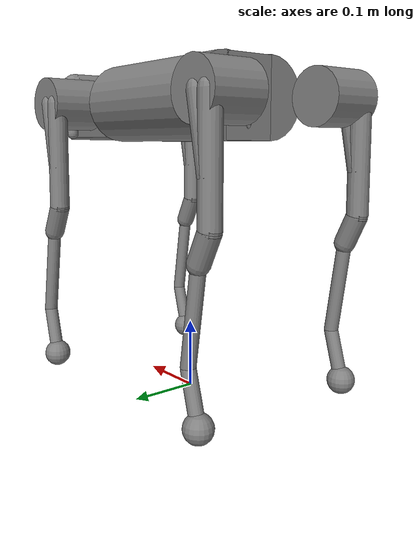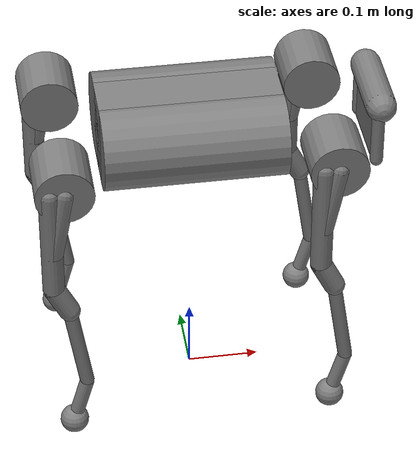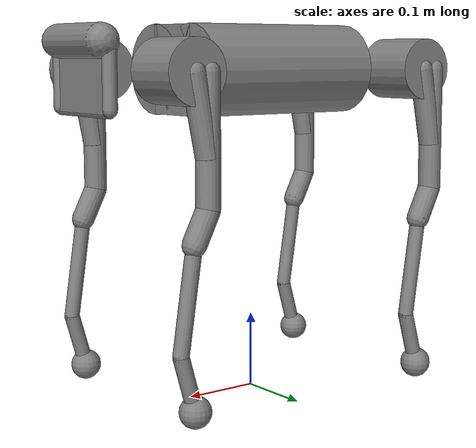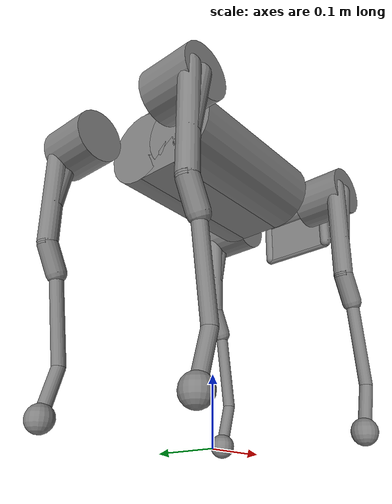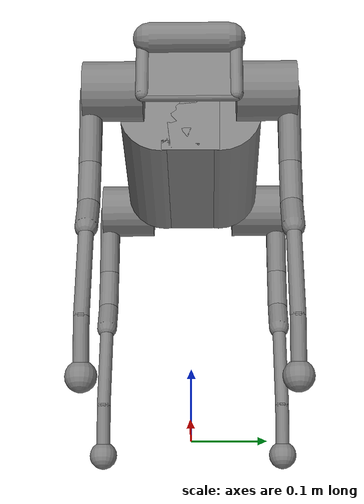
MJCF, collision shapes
<mujoco model="a1">
  <compiler angle="radian" meshdir="assets" texturedir="assets" autolimits="true"/>

  <option cone="pyramidal" impratio="5" gravity="0 0 -9.81" timestep="0.001"/>
<!--condim-->
  <default>
    <default class="a1">
      <geom friction="0.6" margin="0.001"/>
      <joint axis="0 1 0" damping="0.01" armature="0.01"/>
      <position kp="100" forcerange="-33.5 33.5"/>
      <default class="abduction">
        <joint axis="1 0 0" damping="0.01" range="-0.802851 0.802851"/>
        <position ctrlrange="-0.802851 0.802851"/>
      </default>
      <default class="hip">
        <joint range="-1.0472 4.18879"/>
        <position ctrlrange="-1.0472 4.18879"/>
      </default>
      <default class="knee">
        <joint range="-2.69653 -0.916298"/>
        <position ctrlrange="-2.69653 -0.916298"/>
      </default>
      <default class="visual">
        <geom type="mesh" contype="0" conaffinity="0" group="2" material="dark"/>
      </default>
      <default class="collision">
        <geom group="3" type="capsule"/>
        <default class="hip_left">
          <geom size="0.04 0.04" quat="1 1 0 0" type="cylinder" pos="0 0.055 0"/>
        </default>
        <default class="hip_right">
          <geom size="0.04 0.04" quat="1 1 0 0" type="cylinder" pos="0 -0.055 0"/>
        </default>
        <default class="thigh1">
          <geom size="0.015" fromto="-0.02 0 0 -0.02 0 -0.16"/>
        </default>
        <default class="thigh2">
          <geom size="0.015" fromto="0 0 0 -0.02 0 -0.1"/>
        </default>
        <default class="thigh3">
          <geom size="0.015" fromto="-0.02 0 -0.16 0 0 -0.2"/>
        </default>
        <default class="calf1">
          <geom size="0.01" fromto="0 0 0 0.02 0 -0.13"/>
        </default>
        <default class="calf2">
          <geom size="0.01" fromto="0.02 0 -0.13 0 0 -0.2"/>
        </default>
        <default class="foot">
          <geom type="sphere" size="0.02" pos="0 0 -0.2" priority="1" solimp="0.015 1 0.02" condim="3"
            friction="0.8 0.02 0.01"/>
        </default>
      </default>
    </default>
  </default>

  <asset>
    <material name="dark" specular="0" shininess="0.25" rgba="0.2 0.2 0.2 1"/>
    <texture type="2d" name="trunk_A1" file="trunk_A1.png"/>
    <material name="carbonfibre" texture="trunk_A1" specular="0" shininess="0.25"/>

    <mesh class="a1" file="calf.obj"/>
    <mesh class="a1" file="hip.obj"/>
    <mesh class="a1" file="thigh.obj"/>
    <mesh class="a1" file="thigh_mirror.obj"/>
    <mesh class="a1" file="trunk.obj"/>
  </asset>

  <worldbody>
    <light name="spotlight" mode="targetbodycom" target="trunk" pos="0 -1 2"/>
    <body name="trunk" pos="0 0 0.43" childclass="a1">
      <freejoint name="free"/>
            <inertial mass="10" pos="0 0.0041 -0.0005"
        fullinertia="0.158533 0.377999 0.456542 -3.66e-05 -6.11e-05 -2.75e-05"/>
      <geom class="visual" mesh="trunk" material="carbonfibre"/>
      <geom class="collision" size="0.125 0.04 0.057" type="box"/>
      <geom class="collision" quat="1 0 1 0" pos="0 -0.04 0" size="0.058 0.125" type="cylinder"/>
      <geom class="collision" quat="1 0 1 0" pos="0 +0.04 0" size="0.058 0.125" type="cylinder"/>
      <geom class="collision" pos="0.25 0 0" size="0.005 0.06 0.05" type="box"/>
      <geom class="collision" pos="0.25 0.06 -0.01" size="0.009 0.035"/>
      <geom class="collision" pos="0.25 -0.06 -0.01" size="0.009 0.035"/>
      <geom class="collision" pos="0.25 0 -0.05" size="0.005 0.06" quat="1 1 0 0"/>
      <geom class="collision" pos="0.255 0 0.0355" size="0.021 0.052" quat="1 1 0 0"/>
      <site name="imu" pos="0 0 0"/>
        <body name="FL_hip" pos="0.183 0.047 0">
        <inertial mass="0.696" pos="-0.003311 0.000635 3.1e-05" quat="0.494499 0.491507 0.506268 0.507528"
          diaginertia="0.000807752 0.00055293 0.000468983"/>
        <joint class="abduction" name="FL_hip_joint"/>
        <geom class="visual" mesh="hip"/>
        <geom class="hip_left"/>
        <geom class="collision" size="0.04 0.04" pos="0 0.055 0" quat="1 1 0 0" type="cylinder"/>
        <site name='FL_in_shoulder' pos='0 0 0' quat='1 0 0 0' size='0.01' rgba="0 0 0 0"/>  <!-- added-->
        <body name="FL_thigh" pos="0 0.08505 0">
          <inertial mass="1.013" pos="-0.003237 -0.022327 -0.027326" quat="0.999125 0.00256393 -0.0409531 0.00806091"
            diaginertia="0.00555739 0.00513936 0.00133944"/>
          <joint class="hip" name="FL_thigh_joint"/>
          <geom class="visual" mesh="thigh"/>
          <geom class="thigh1"/>
          <geom class="thigh2"/>
          <geom class="thigh3"/>
          <site name='FL_out_shoulder' pos='0 0 0' quat='1 0 0 0' size='0.01' rgba="0 0 0 0"/>   <!-- added-->
          <body name="FL_calf" pos="0 0 -0.2">
            <inertial mass="0.226" pos="0.00472659 0 -0.131975" quat="0.706886 0.017653 0.017653 0.706886"
              diaginertia="0.00340344 0.00339393 3.54834e-05"/>
            <joint class="knee" name="FL_calf_joint"/>
            <geom class="visual" mesh="calf"/>
            <geom class="calf1"/>
            <geom class="calf2"/>
            <geom class="foot"/>
            <site name='FL_elbow' pos='0 0 0' quat='1 0 0 0' size='0.01' rgba="0 0 0 0"/> <!-- added-->
            <site name='FL_foot' pos='0 0 -0.2' quat='1 0 0 0' size='0.01' rgba="0 0 0 0"/> <!-- added-->
          </body>
        </body>
      </body>
      <body name="FR_hip" pos="0.183 -0.047 0">
        <inertial mass="0.696" pos="-0.003311 -0.000635 3.1e-05" quat="0.507528 0.506268 0.491507 0.494499"
          diaginertia="0.000807752 0.00055293 0.000468983"/>
        <joint class="abduction" name="FR_hip_joint"/>
        <geom class="visual" mesh="hip" quat="0 1 0 0"/>
        <geom class="hip_right"/>
        <site name='FR_in_shoulder' pos='0 0 0' quat='1 0 0 0' size='0.01' rgba="0 0 0 0"/>  <!-- added-->
        <body name="FR_thigh" pos="0 -0.08505 0">
          <inertial mass="1.013" pos="-0.003237 0.022327 -0.027326" quat="0.999125 -0.00256393 -0.0409531 -0.00806091"
            diaginertia="0.00555739 0.00513936 0.00133944"/>
          <joint class="hip" name="FR_thigh_joint"/>
          <geom class="visual" mesh="thigh_mirror"/>
          <geom class="thigh1"/>
          <geom class="thigh2"/>
          <geom class="thigh3"/>
          <site name='FR_out_shoulder' pos='0 0 0' quat='1 0 0 0' size='0.01' rgba="0 0 0 0"/>   <!-- added-->
          <body name="FR_calf" pos="0 0 -0.2">
            <inertial mass="0.226" pos="0.00472659 0 -0.131975" quat="0.706886 0.017653 0.017653 0.706886"
              diaginertia="0.00340344 0.00339393 3.54834e-05"/>
            <joint class="knee" name="FR_calf_joint"/>
            <geom class="visual" mesh="calf"/>
            <geom class="calf1"/>
            <geom class="calf2"/>
            <geom class="foot"/>
            <site name='FR_foot' pos='0 0 -0.2' size='0.01' rgba="0 0 1 1"/> <!-- added-->
          </body>
        </body>
      </body>
           <body name="RL_hip" pos="-0.183 0.047 0">
        <inertial mass="0.696" pos="0.003311 0.000635 3.1e-05" quat="0.506268 0.507528 0.494499 0.491507"
          diaginertia="0.000807752 0.00055293 0.000468983"/>
        <joint class="abduction" name="RL_hip_joint"/>
        <geom class="visual" quat="0 0 1 0" mesh="hip"/>
        <geom class="hip_left"/>
        <site name='RL_in_shoulder' pos='0 0 0' quat='1 0 0 0' size='0.01' rgba="0 0 0 0"/>  <!-- added-->
        <body name="RL_thigh" pos="0 0.08505 0">
          <inertial mass="1.013" pos="-0.003237 -0.022327 -0.027326" quat="0.999125 0.00256393 -0.0409531 0.00806091"
            diaginertia="0.00555739 0.00513936 0.00133944"/>
          <joint class="hip" name="RL_thigh_joint"/>
          <geom class="visual" mesh="thigh"/>
          <geom class="thigh1"/>
          <geom class="thigh2"/>
          <geom class="thigh3"/>
          <site name='RL_out_shoulder' pos='0 0 0' quat='1 0 0 0' size='0.01' rgba="0 0 0 0"/>   <!-- added-->
          <body name="RL_calf" pos="0 0 -0.2">
            <inertial mass="0.226" pos="0.00472659 0 -0.131975" quat="0.706886 0.017653 0.017653 0.706886"
              diaginertia="0.00340344 0.00339393 3.54834e-05"/>
            <joint class="knee" name="RL_calf_joint"/>
            <geom class="visual" mesh="calf"/>
            <geom class="calf1"/>
            <geom class="calf2"/>
            <geom class="foot"/>
            <site name='RL_elbow' pos='0 0 0' quat='1 0 0 0' size='0.01' rgba="0 0 0 0"/> <!-- added-->
            <site name='RL_foot' pos='0 0 -0.2' quat='1 0 0 0' size='0.01' rgba="0 0 0 0"/> <!-- added-->
          </body>
        </body>
      </body>
      <body name="RR_hip" pos="-0.183 -0.047 0">
        <inertial mass="0.696" pos="0.003311 -0.000635 3.1e-05" quat="0.491507 0.494499 0.507528 0.506268"
          diaginertia="0.000807752 0.00055293 0.000468983"/>
        <joint class="abduction" name="RR_hip_joint"/>
        <geom class="visual" quat="0 0 0 -1" mesh="hip"/>
        <geom class="hip_right"/>
        <site name='RR_in_shoulder' pos='0 0 0' quat='1 0 0 0' size='0.01' rgba="0 0 0 0"/>  <!-- added-->
        <body name="RR_thigh" pos="0 -0.08505 0">
          <inertial mass="1.013" pos="-0.003237 0.022327 -0.027326" quat="0.999125 -0.00256393 -0.0409531 -0.00806091"
            diaginertia="0.00555739 0.00513936 0.00133944"/>
          <joint class="hip" name="RR_thigh_joint"/>
          <geom class="visual" mesh="thigh_mirror"/>
          <geom class="thigh1"/>
          <geom class="thigh2"/>
          <geom class="thigh3"/>
          <site name='RR_out_shoulder' pos='0 0 0' quat='1 0 0 0' size='0.01' rgba="0 0 0 0"/>   <!-- added-->
          <body name="RR_calf" pos="0 0 -0.2">
            <inertial mass="0.226" pos="0.00472659 0 -0.131975" quat="0.706886 0.017653 0.017653 0.706886"
              diaginertia="0.00340344 0.00339393 3.54834e-05"/>
            <joint class="knee" name="RR_calf_joint"/>
            <geom class="visual" mesh="calf"/>
            <geom class="calf1"/>
            <geom class="calf2"/>
            <geom class="foot"/>
            <site name='RR_elbow' pos='0 0 0' quat='1 0 0 0' size='0.01' rgba="0 0 0 0"/> <!-- added-->
            <site name='RR_foot' pos='0 0 -0.2' quat='1 0 0 0' size='0.01' rgba="0 0 0 0"/> <!-- added-->
          </body>
        </body>
      </body>

    </body>
  </worldbody>

  <actuator>
    <motor name="FL_hip" joint="FL_hip_joint"/>
    <motor name="FL_thigh" joint="FL_thigh_joint"/>
    <motor name="FL_calf" joint="FL_calf_joint"/>
    <motor name="FR_hip" joint="FR_hip_joint"/>
    <motor name="FR_thigh" joint="FR_thigh_joint"/>
    <motor name="FR_calf" joint="FR_calf_joint"/>
    <motor name="RL_hip" joint="RL_hip_joint"/>
    <motor name="RL_thigh" joint="RL_thigh_joint"/>
    <motor name="RL_calf" joint="RL_calf_joint"/>
    <motor name="RR_hip" joint="RR_hip_joint"/>
    <motor name="RR_thigh" joint="RR_thigh_joint"/>
    <motor name="RR_calf" joint="RR_calf_joint"/>

  </actuator>
  <sensor>
    <framequat name="Body_Quat" objtype="site" objname="imu"/>
    <frameangvel objtype="site" name="Body_Gyro"  objname="imu"/>
    <jointpos name="FL_hip_pos" joint="FL_hip_joint"/>
    <jointpos name="FL_thigh_pos" joint="FL_thigh_joint"/>
    <jointpos name="FL_calf_pos" joint="FL_calf_joint"/>
    <jointpos name="FR_hip_pos" joint="FR_hip_joint"/>
    <jointpos name="FR_thigh_pos" joint="FR_thigh_joint"/>
    <jointpos name="FR_calf_pos" joint="FR_calf_joint"/>
    <jointpos name="RL_hip_pos" joint="RL_hip_joint"/>
    <jointpos name="RL_thigh_pos" joint="RL_thigh_joint"/>
    <jointpos name="RL_calf_pos" joint="RL_calf_joint"/>
    <jointpos name="RR_hip_pos" joint="RR_hip_joint"/>
    <jointpos name="RR_thigh_pos" joint="RR_thigh_joint"/>
    <jointpos name="RR_calf_pos" joint="RR_calf_joint"/>

    <jointvel name="FL_hip_vel" joint="FL_hip_joint"/>
    <jointvel name="FL_thigh_vel" joint="FL_thigh_joint"/>
    <jointvel name="FL_calf_vel" joint="FL_calf_joint"/>
    <jointvel name="FR_hip_vel" joint="FR_hip_joint"/>
    <jointvel name="FR_thigh_vel" joint="FR_thigh_joint"/>
    <jointvel name="FR_calf_vel" joint="FR_calf_joint"/>
    <jointvel name="RL_hip_vel" joint="RL_hip_joint"/>
    <jointvel name="RL_thigh_vel" joint="RL_thigh_joint"/>
    <jointvel name="RL_calf_vel" joint="RL_calf_joint"/>
    <jointvel name="RR_hip_vel" joint="RR_hip_joint"/>
    <jointvel name="RR_thigh_vel" joint="RR_thigh_joint"/>
    <jointvel name="RR_calf_vel" joint="RR_calf_joint"/>
  </sensor>
  <keyframe>
    <key name="home" qpos="0 0 0.27 1 0 0 0 0 0.9 -1.8 0 0.9 -1.8 0 0.9 -1.8 0 0.9 -1.8"
      ctrl="0 0.9 -1.8 0 0.9 -1.8 0 0.9 -1.8 0 0.9 -1.8"/>
  </keyframe>
</mujoco>
